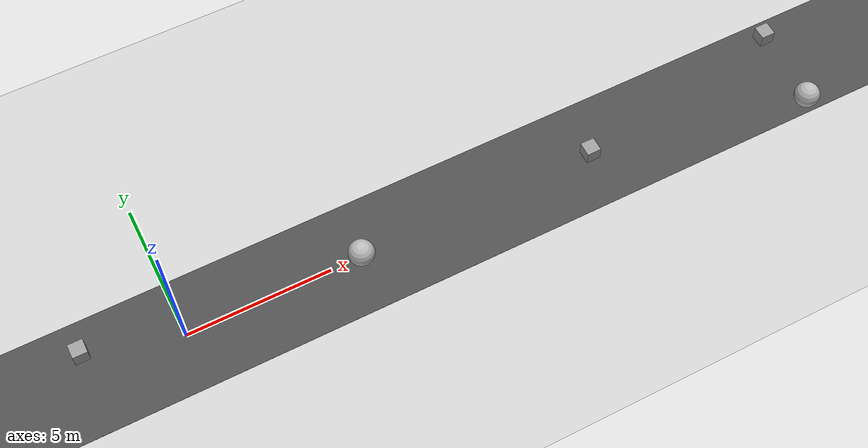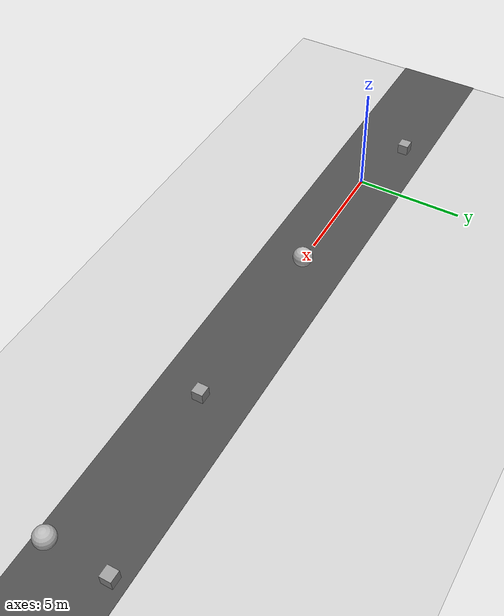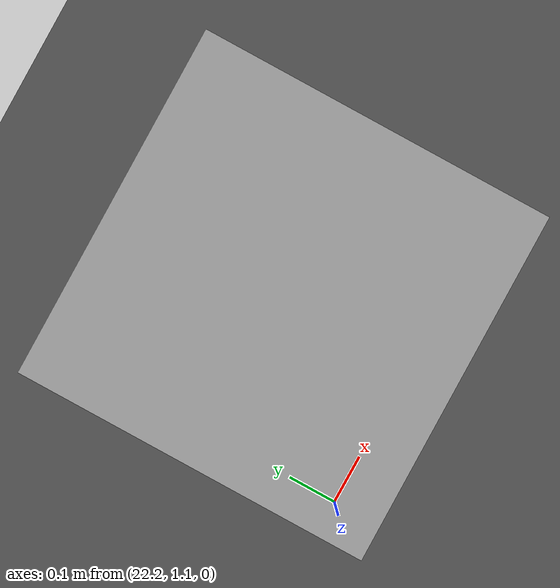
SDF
<sdf version="1.6">
 <world name="default">
  <light name="sun" type="directional">
   <pose>0 0 10 0 -0 0</pose>
   <diffuse>0.8 0.8 0.8 1</diffuse>
   <specular>0.2 0.2 0.2 1</specular>
   <attenuation>
    <range>1000</range>
    <constant>0.9</constant>
    <linear>0.01</linear>
    <quadratic>0.001</quadratic>
   </attenuation>
   <direction>-0.5 0.1 -0.9</direction>
  </light>
  <model name="ground_plane">
   <static>1</static>
   <link name="link">
    <collision name="collision">
     <geometry><plane><normal>0 0 1</normal><size>200 200</size></plane></geometry>
     <surface>
      <contact><collide_bitmask>65535</collide_bitmask></contact>
      <friction><ode><mu>100</mu><mu2>50</mu2></ode></friction>
     </surface>
    </collision>
    <visual name="visual">
     <cast_shadows>0</cast_shadows>
     <geometry><plane><normal>0 0 1</normal><size>200 200</size></plane></geometry>
     <material>
      <script><uri>file://media/materials/scripts/gazebo.material</uri><name>Gazebo/Grey</name></script>
     </material>
    </visual>
   </link>
  </model>
  <gravity>0 0 -9.8</gravity>
  <magnetic_field>6e-06 2.3e-05 -4.2e-05</magnetic_field>
  <atmosphere type="adiabatic"/>
  <physics name="default_physics" default="0" type="ode">
   <max_step_size>0.001</max_step_size>
   <real_time_factor>1</real_time_factor>
   <real_time_update_rate>1000</real_time_update_rate>
  </physics>
  <scene><ambient>0.4 0.4 0.4 1</ambient><background>0.7 0.7 0.7 1</background><shadows>1</shadows></scene>
  <spherical_coordinates>
   <surface_model>EARTH_WGS84</surface_model>
   <latitude_deg>0</latitude_deg>
   <longitude_deg>0</longitude_deg>
   <elevation>0</elevation>
   <heading_deg>0</heading_deg>
  </spherical_coordinates>
  <model name="dirt_road">
   <static>1</static>
   <link name="link">
    <collision name="collision"><geometry><box><size>80 4 0.02</size></box></geometry></collision>
    <visual name="visual">
     <cast_shadows>0</cast_shadows>
     <geometry><box><size>80 4 0.02</size></box></geometry>
     <material>
      <script>
       <uri>model://one_stripe_road/materials/scripts</uri>
       <uri>model://one_stripe_road/materials/textures</uri>
       <name>OneStripeRoad</name>
      </script>
     </material>
    </visual>
   </link>
   <pose>18.8838 0.024028 0 0 -0 0</pose>
  </model>
  <model name="unit_box">
   <pose>6.10332 0.003736 0.260001 2e-06 -0 0</pose>
   <link name="link">
    <inertial>
     <mass>1</mass>
     <inertia>
      <ixx>0.166667</ixx>
      <ixy>0</ixy>
      <ixz>0</ixz>
      <iyy>0.166667</iyy>
      <iyz>0</iyz>
      <izz>0.166667</izz>
     </inertia>
    </inertial>
    <collision name="collision"><geometry><box><size>0.5 0.5 0.5</size></box></geometry></collision>
    <visual name="visual">
     <geometry><box><size>0.5 0.5 0.5</size></box></geometry>
     <material>
      <script><name>Gazebo/Grey</name><uri>file://media/materials/scripts/gazebo.material</uri></script>
     </material>
    </visual>
    <visual name="visual_sphere_cue">
     <geometry><sphere><radius>0.45</radius></sphere></geometry>
     <plugin name="blink" filename="libBlinkVisualPlugin.so">
      <color_a>0 1 0 0.2</color_a>
      <color_b>0 1 0 0.05</color_b>
      <period>2</period>
      <use_wall_time>true</use_wall_time>
     </plugin>
     <material>
      <script><uri>file://media/materials/scripts/gazebo.material</uri><name>__default__</name></script>
     </material>
    </visual>
   </link>
  </model>
  <model name="unit_box_clone">
   <pose>14.6121 -0.016059 0.260001 2e-06 -0 0</pose>
   <link name="link">
    <inertial>
     <mass>1</mass>
     <inertia>
      <ixx>0.166667</ixx>
      <ixy>0</ixy>
      <ixz>0</ixz>
      <iyy>0.166667</iyy>
      <iyz>0</iyz>
      <izz>0.166667</izz>
     </inertia>
    </inertial>
    <collision name="collision"><geometry><box><size>0.5 0.5 0.5</size></box></geometry></collision>
    <visual name="visual">
     <geometry><box><size>0.5 0.5 0.5</size></box></geometry>
     <material>
      <script><name>Gazebo/Grey</name><uri>file://media/materials/scripts/gazebo.material</uri></script>
     </material>
    </visual>
   </link>
   <plugin name="model_push" filename="libvisual_cue_plugin.so"/>
  </model>
  <model name="unit_box_clone_0">
   <pose>22.3901 -1.47063 0.260001 2e-06 -0 0</pose>
   <link name="link">
    <inertial>
     <mass>1</mass>
     <inertia>
      <ixx>0.166667</ixx>
      <ixy>0</ixy>
      <ixz>0</ixz>
      <iyy>0.166667</iyy>
      <iyz>0</iyz>
      <izz>0.166667</izz>
     </inertia>
    </inertial>
    <collision name="collision"><geometry><box><size>0.5 0.5 0.5</size></box></geometry></collision>
    <visual name="visual">
     <geometry><box><size>0.5 0.5 0.5</size></box></geometry>
     <material>
      <script><name>Gazebo/Grey</name><uri>file://media/materials/scripts/gazebo.material</uri></script>
     </material>
    </visual>
    <visual name="visual_sphere_cue">
     <geometry><sphere><radius>0.45</radius></sphere></geometry>
     <plugin name="blink" filename="libBlinkVisualPlugin.so">
      <color_a>0 1 0 0.2</color_a>
      <color_b>0 1 0 0.05</color_b>
      <period>2</period>
      <use_wall_time>true</use_wall_time>
     </plugin>
     <material>
      <script><uri>file://media/materials/scripts/gazebo.material</uri><name>__default__</name></script>
     </material>
    </visual>
   </link>
  </model>
  <model name="unit_box_clone_clone">
   <pose>22.4949 1.37502 0.260001 2e-06 -0 0</pose>
   <link name="link">
    <inertial>
     <mass>1</mass>
     <inertia>
      <ixx>0.166667</ixx>
      <ixy>0</ixy>
      <ixz>0</ixz>
      <iyy>0.166667</iyy>
      <iyz>0</iyz>
      <izz>0.166667</izz>
     </inertia>
    </inertial>
    <collision name="collision"><geometry><box><size>0.5 0.5 0.5</size></box></geometry></collision>
    <visual name="visual">
     <geometry><box><size>0.5 0.5 0.5</size></box></geometry>
     <material>
      <script><name>Gazebo/Grey</name><uri>file://media/materials/scripts/gazebo.material</uri></script>
     </material>
    </visual>
   </link>
   <plugin name="model_push" filename="libvisual_cue_plugin.so"/>
  </model>
  <model name="unit_box_0">
   <pose>-3.17081 0.866817 0.26 0 -0 0</pose>
   <link name="link">
    <inertial>
     <mass>1</mass>
     <inertia>
      <ixx>0.166667</ixx>
      <ixy>0</ixy>
      <ixz>0</ixz>
      <iyy>0.166667</iyy>
      <iyz>0</iyz>
      <izz>0.166667</izz>
     </inertia>
    </inertial>
    <collision name="collision"><geometry><box><size>0.5 0.5 0.5</size></box></geometry></collision>
    <visual name="visual">
     <geometry><box><size>0.5 0.5 0.5</size></box></geometry>
     <material>
      <script><name>Gazebo/Grey</name><uri>file://media/materials/scripts/gazebo.material</uri></script>
     </material>
    </visual>
   </link>
  </model>
 </world>
</sdf>
